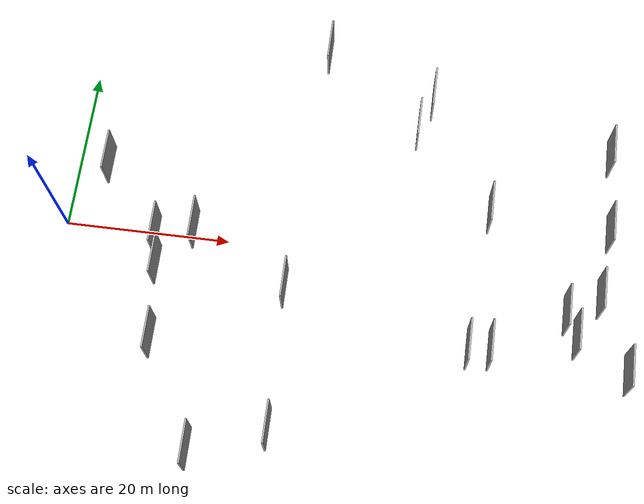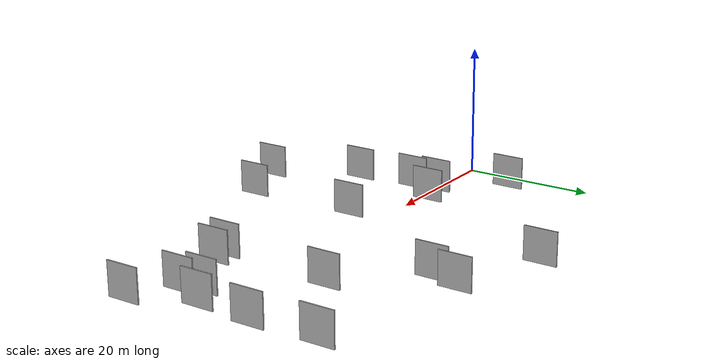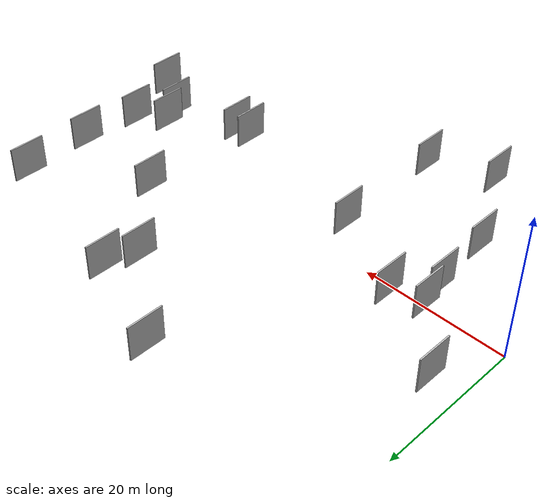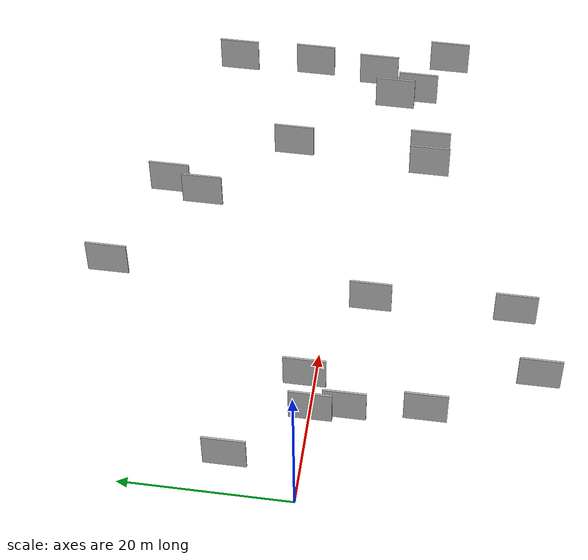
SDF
<sdf version="1.6">
 <world name="default">
  <scene>
   <sky><clouds><speed>12</speed></clouds></sky>
   <ambient>0.4 0.4 0.4 1</ambient>
   <background>0.7 0.7 0.7 1</background>
   <shadows>1</shadows>
  </scene>
  <gravity>0 0 -9.8066</gravity>
  <magnetic_field>6e-06 2.3e-05 -4.2e-05</magnetic_field>
  <physics default="0" name="default_physics" type="ode">
   <ode>
    <solver>
     <type>quick</type>
     <iters>10</iters>
     <sor>1.0</sor>
     <use_dynamic_moi_rescaling>0</use_dynamic_moi_rescaling>
    </solver>
    <constraints>
     <cfm>0</cfm>
     <erp>0.2</erp>
     <contact_max_correcting_vel>100</contact_max_correcting_vel>
     <contact_surface_layer>0.001</contact_surface_layer>
    </constraints>
   </ode>
   <max_step_size>0.004</max_step_size>
   <real_time_factor>1</real_time_factor>
   <real_time_update_rate>250</real_time_update_rate>
  </physics>
  <light name="sun" type="directional">
   <pose>0 0 10 0 0 0</pose>
   <diffuse>0.8 0.8 0.8 1</diffuse>
   <specular>0.2 0.2 0.2 1</specular>
   <attenuation>
    <range>1000</range>
    <constant>0.9</constant>
    <linear>0.01</linear>
    <quadratic>0.001</quadratic>
   </attenuation>
   <direction>-0.5 0.1 -0.9</direction>
  </light>
  <model name="grey_wall_1">
   <static>1</static>
   <pose>19.2604 -25.5647 0.0 0.000000 0.000000 1.570796</pose>
   <link name="link">
    <pose>0 0 2.50 0 0 0</pose>
    <collision name="collision"><geometry><box><size>5.00 0.2 5.00</size></box></geometry></collision>
    <visual name="visual">
     <cast_shadows>0</cast_shadows>
     <geometry><box><size>5.00 0.2 5.00</size></box></geometry>
     <material>
      <script>
       <uri>model://HANNAS_wall/materials/scripts</uri>
       <uri>model://HANNAS_wall/materials/textures</uri>
       <name>vrc/HANNAS_wall</name>
      </script>
     </material>
    </visual>
   </link>
  </model>
  <model name="grey_wall_2">
   <static>1</static>
   <pose>11.1673 -0.1468 0.0 0.000000 0.000000 1.570796</pose>
   <link name="link">
    <pose>0 0 2.50 0 0 0</pose>
    <collision name="collision"><geometry><box><size>5.00 0.2 5.00</size></box></geometry></collision>
    <visual name="visual">
     <cast_shadows>0</cast_shadows>
     <geometry><box><size>5.00 0.2 5.00</size></box></geometry>
     <material>
      <script>
       <uri>model://HANNAS_wall/materials/scripts</uri>
       <uri>model://HANNAS_wall/materials/textures</uri>
       <name>vrc/HANNAS_wall</name>
      </script>
     </material>
    </visual>
   </link>
  </model>
  <model name="grey_wall_3">
   <static>1</static>
   <pose>49.9607 -9.9077 0.0 0.000000 0.000000 1.570796</pose>
   <link name="link">
    <pose>0 0 2.50 0 0 0</pose>
    <collision name="collision"><geometry><box><size>5.00 0.2 5.00</size></box></geometry></collision>
    <visual name="visual">
     <cast_shadows>0</cast_shadows>
     <geometry><box><size>5.00 0.2 5.00</size></box></geometry>
     <material>
      <script>
       <uri>model://HANNAS_wall/materials/scripts</uri>
       <uri>model://HANNAS_wall/materials/textures</uri>
       <name>vrc/HANNAS_wall</name>
      </script>
     </material>
    </visual>
   </link>
  </model>
  <model name="grey_wall_4">
   <static>1</static>
   <pose>3.8619 8.4435 0.0 0.000000 0.000000 1.570796</pose>
   <link name="link">
    <pose>0 0 2.50 0 0 0</pose>
    <collision name="collision"><geometry><box><size>5.00 0.2 5.00</size></box></geometry></collision>
    <visual name="visual">
     <cast_shadows>0</cast_shadows>
     <geometry><box><size>5.00 0.2 5.00</size></box></geometry>
     <material>
      <script>
       <uri>model://HANNAS_wall/materials/scripts</uri>
       <uri>model://HANNAS_wall/materials/textures</uri>
       <name>vrc/HANNAS_wall</name>
      </script>
     </material>
    </visual>
   </link>
  </model>
  <model name="grey_wall_5">
   <static>1</static>
   <pose>15.7238 1.1339 0.0 0.000000 0.000000 1.570796</pose>
   <link name="link">
    <pose>0 0 2.50 0 0 0</pose>
    <collision name="collision"><geometry><box><size>5.00 0.2 5.00</size></box></geometry></collision>
    <visual name="visual">
     <cast_shadows>0</cast_shadows>
     <geometry><box><size>5.00 0.2 5.00</size></box></geometry>
     <material>
      <script>
       <uri>model://HANNAS_wall/materials/scripts</uri>
       <uri>model://HANNAS_wall/materials/textures</uri>
       <name>vrc/HANNAS_wall</name>
      </script>
     </material>
    </visual>
   </link>
  </model>
  <model name="grey_wall_6">
   <static>1</static>
   <pose>65.0688 -1.8181 0.0 0.000000 0.000000 1.570796</pose>
   <link name="link">
    <pose>0 0 2.50 0 0 0</pose>
    <collision name="collision"><geometry><box><size>5.00 0.2 5.00</size></box></geometry></collision>
    <visual name="visual">
     <cast_shadows>0</cast_shadows>
     <geometry><box><size>5.00 0.2 5.00</size></box></geometry>
     <material>
      <script>
       <uri>model://HANNAS_wall/materials/scripts</uri>
       <uri>model://HANNAS_wall/materials/textures</uri>
       <name>vrc/HANNAS_wall</name>
      </script>
     </material>
    </visual>
   </link>
  </model>
  <model name="grey_wall_7">
   <static>1</static>
   <pose>61.1487 -4.3711 0.0 0.000000 0.000000 1.570796</pose>
   <link name="link">
    <pose>0 0 2.50 0 0 0</pose>
    <collision name="collision"><geometry><box><size>5.00 0.2 5.00</size></box></geometry></collision>
    <visual name="visual">
     <cast_shadows>0</cast_shadows>
     <geometry><box><size>5.00 0.2 5.00</size></box></geometry>
     <material>
      <script>
       <uri>model://HANNAS_wall/materials/scripts</uri>
       <uri>model://HANNAS_wall/materials/textures</uri>
       <name>vrc/HANNAS_wall</name>
      </script>
     </material>
    </visual>
   </link>
  </model>
  <model name="grey_wall_8">
   <static>1</static>
   <pose>62.4703 -7.1964 0.0 0.000000 0.000000 1.570796</pose>
   <link name="link">
    <pose>0 0 2.50 0 0 0</pose>
    <collision name="collision"><geometry><box><size>5.00 0.2 5.00</size></box></geometry></collision>
    <visual name="visual">
     <cast_shadows>0</cast_shadows>
     <geometry><box><size>5.00 0.2 5.00</size></box></geometry>
     <material>
      <script>
       <uri>model://HANNAS_wall/materials/scripts</uri>
       <uri>model://HANNAS_wall/materials/textures</uri>
       <name>vrc/HANNAS_wall</name>
      </script>
     </material>
    </visual>
   </link>
  </model>
  <model name="grey_wall_9">
   <static>1</static>
   <pose>11.8739 -3.9553 0.0 0.000000 0.000000 1.570796</pose>
   <link name="link">
    <pose>0 0 2.50 0 0 0</pose>
    <collision name="collision"><geometry><box><size>5.00 0.2 5.00</size></box></geometry></collision>
    <visual name="visual">
     <cast_shadows>0</cast_shadows>
     <geometry><box><size>5.00 0.2 5.00</size></box></geometry>
     <material>
      <script>
       <uri>model://HANNAS_wall/materials/scripts</uri>
       <uri>model://HANNAS_wall/materials/textures</uri>
       <name>vrc/HANNAS_wall</name>
      </script>
     </material>
    </visual>
   </link>
  </model>
  <model name="grey_wall_10">
   <static>1</static>
   <pose>29.1301 27.0219 0.0 0.000000 0.000000 1.570796</pose>
   <link name="link">
    <pose>0 0 2.50 0 0 0</pose>
    <collision name="collision"><geometry><box><size>5.00 0.2 5.00</size></box></geometry></collision>
    <visual name="visual">
     <cast_shadows>0</cast_shadows>
     <geometry><box><size>5.00 0.2 5.00</size></box></geometry>
     <material>
      <script>
       <uri>model://HANNAS_wall/materials/scripts</uri>
       <uri>model://HANNAS_wall/materials/textures</uri>
       <name>vrc/HANNAS_wall</name>
      </script>
     </material>
    </visual>
   </link>
  </model>
  <model name="grey_wall_11">
   <static>1</static>
   <pose>68.6315 -10.7822 0.0 0.000000 0.000000 1.570796</pose>
   <link name="link">
    <pose>0 0 2.50 0 0 0</pose>
    <collision name="collision"><geometry><box><size>5.00 0.2 5.00</size></box></geometry></collision>
    <visual name="visual">
     <cast_shadows>0</cast_shadows>
     <geometry><box><size>5.00 0.2 5.00</size></box></geometry>
     <material>
      <script>
       <uri>model://HANNAS_wall/materials/scripts</uri>
       <uri>model://HANNAS_wall/materials/textures</uri>
       <name>vrc/HANNAS_wall</name>
      </script>
     </material>
    </visual>
   </link>
  </model>
  <model name="grey_wall_12">
   <static>1</static>
   <pose>65.4357 16.7715 0.0 0.000000 0.000000 1.570796</pose>
   <link name="link">
    <pose>0 0 2.50 0 0 0</pose>
    <collision name="collision"><geometry><box><size>5.00 0.2 5.00</size></box></geometry></collision>
    <visual name="visual">
     <cast_shadows>0</cast_shadows>
     <geometry><box><size>5.00 0.2 5.00</size></box></geometry>
     <material>
      <script>
       <uri>model://HANNAS_wall/materials/scripts</uri>
       <uri>model://HANNAS_wall/materials/textures</uri>
       <name>vrc/HANNAS_wall</name>
      </script>
     </material>
    </visual>
   </link>
  </model>
  <model name="grey_wall_13">
   <static>1</static>
   <pose>65.8063 6.6797 0.0 0.000000 0.000000 1.570796</pose>
   <link name="link">
    <pose>0 0 2.50 0 0 0</pose>
    <collision name="collision"><geometry><box><size>5.00 0.2 5.00</size></box></geometry></collision>
    <visual name="visual">
     <cast_shadows>0</cast_shadows>
     <geometry><box><size>5.00 0.2 5.00</size></box></geometry>
     <material>
      <script>
       <uri>model://HANNAS_wall/materials/scripts</uri>
       <uri>model://HANNAS_wall/materials/textures</uri>
       <name>vrc/HANNAS_wall</name>
      </script>
     </material>
    </visual>
   </link>
  </model>
  <model name="grey_wall_14">
   <static>1</static>
   <pose>27.6433 -5.0793 0.0 0.000000 0.000000 1.570796</pose>
   <link name="link">
    <pose>0 0 2.50 0 0 0</pose>
    <collision name="collision"><geometry><box><size>5.00 0.2 5.00</size></box></geometry></collision>
    <visual name="visual">
     <cast_shadows>0</cast_shadows>
     <geometry><box><size>5.00 0.2 5.00</size></box></geometry>
     <material>
      <script>
       <uri>model://HANNAS_wall/materials/scripts</uri>
       <uri>model://HANNAS_wall/materials/textures</uri>
       <name>vrc/HANNAS_wall</name>
      </script>
     </material>
    </visual>
   </link>
  </model>
  <model name="grey_wall_15">
   <static>1</static>
   <pose>51.2115 7.4638 0.0 0.000000 0.000000 1.570796</pose>
   <link name="link">
    <pose>0 0 2.50 0 0 0</pose>
    <collision name="collision"><geometry><box><size>5.00 0.2 5.00</size></box></geometry></collision>
    <visual name="visual">
     <cast_shadows>0</cast_shadows>
     <geometry><box><size>5.00 0.2 5.00</size></box></geometry>
     <material>
      <script>
       <uri>model://HANNAS_wall/materials/scripts</uri>
       <uri>model://HANNAS_wall/materials/textures</uri>
       <name>vrc/HANNAS_wall</name>
      </script>
     </material>
    </visual>
   </link>
  </model>
  <model name="grey_wall_16">
   <static>1</static>
   <pose>41.4330 17.6081 0.0 0.000000 0.000000 1.570796</pose>
   <link name="link">
    <pose>0 0 2.50 0 0 0</pose>
    <collision name="collision"><geometry><box><size>5.00 0.2 5.00</size></box></geometry></collision>
    <visual name="visual">
     <cast_shadows>0</cast_shadows>
     <geometry><box><size>5.00 0.2 5.00</size></box></geometry>
     <material>
      <script>
       <uri>model://HANNAS_wall/materials/scripts</uri>
       <uri>model://HANNAS_wall/materials/textures</uri>
       <name>vrc/HANNAS_wall</name>
      </script>
     </material>
    </visual>
   </link>
  </model>
  <model name="grey_wall_17">
   <static>1</static>
   <pose>12.8066 -13.0829 0.0 0.000000 0.000000 1.570796</pose>
   <link name="link">
    <pose>0 0 2.50 0 0 0</pose>
    <collision name="collision"><geometry><box><size>5.00 0.2 5.00</size></box></geometry></collision>
    <visual name="visual">
     <cast_shadows>0</cast_shadows>
     <geometry><box><size>5.00 0.2 5.00</size></box></geometry>
     <material>
      <script>
       <uri>model://HANNAS_wall/materials/scripts</uri>
       <uri>model://HANNAS_wall/materials/textures</uri>
       <name>vrc/HANNAS_wall</name>
      </script>
     </material>
    </visual>
   </link>
  </model>
  <model name="grey_wall_18">
   <static>1</static>
   <pose>28.0903 -22.2286 0.0 0.000000 0.000000 1.570796</pose>
   <link name="link">
    <pose>0 0 2.50 0 0 0</pose>
    <collision name="collision"><geometry><box><size>5.00 0.2 5.00</size></box></geometry></collision>
    <visual name="visual">
     <cast_shadows>0</cast_shadows>
     <geometry><box><size>5.00 0.2 5.00</size></box></geometry>
     <material>
      <script>
       <uri>model://HANNAS_wall/materials/scripts</uri>
       <uri>model://HANNAS_wall/materials/textures</uri>
       <name>vrc/HANNAS_wall</name>
      </script>
     </material>
    </visual>
   </link>
  </model>
  <model name="grey_wall_19">
   <static>1</static>
   <pose>52.5381 -9.7431 0.0 0.000000 0.000000 1.570796</pose>
   <link name="link">
    <pose>0 0 2.50 0 0 0</pose>
    <collision name="collision"><geometry><box><size>5.00 0.2 5.00</size></box></geometry></collision>
    <visual name="visual">
     <cast_shadows>0</cast_shadows>
     <geometry><box><size>5.00 0.2 5.00</size></box></geometry>
     <material>
      <script>
       <uri>model://HANNAS_wall/materials/scripts</uri>
       <uri>model://HANNAS_wall/materials/textures</uri>
       <name>vrc/HANNAS_wall</name>
      </script>
     </material>
    </visual>
   </link>
  </model>
  <model name="grey_wall_20">
   <static>1</static>
   <pose>42.8923 21.9459 0.0 0.000000 0.000000 1.570796</pose>
   <link name="link">
    <pose>0 0 2.50 0 0 0</pose>
    <collision name="collision"><geometry><box><size>5.00 0.2 5.00</size></box></geometry></collision>
    <visual name="visual">
     <cast_shadows>0</cast_shadows>
     <geometry><box><size>5.00 0.2 5.00</size></box></geometry>
     <material>
      <script>
       <uri>model://HANNAS_wall/materials/scripts</uri>
       <uri>model://HANNAS_wall/materials/textures</uri>
       <name>vrc/HANNAS_wall</name>
      </script>
     </material>
    </visual>
   </link>
  </model>
 </world>
</sdf>
